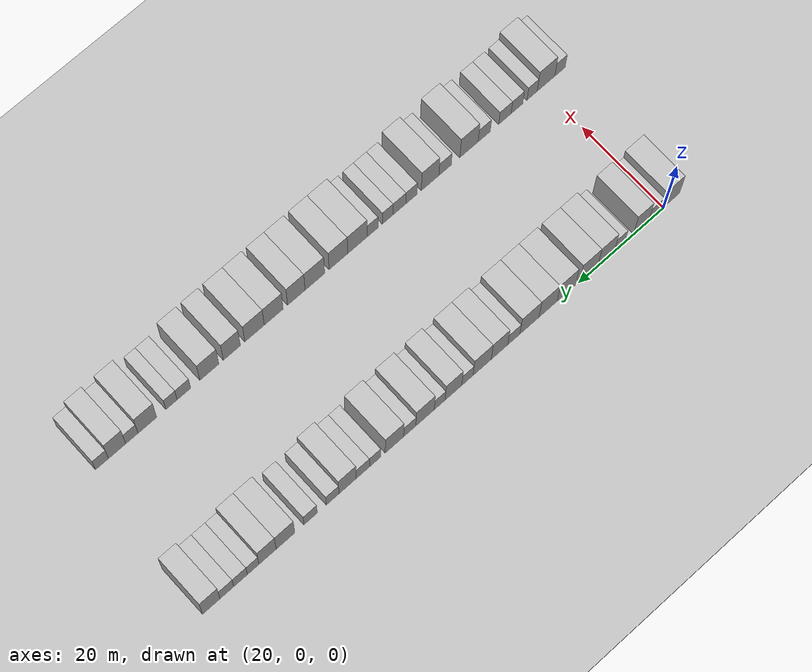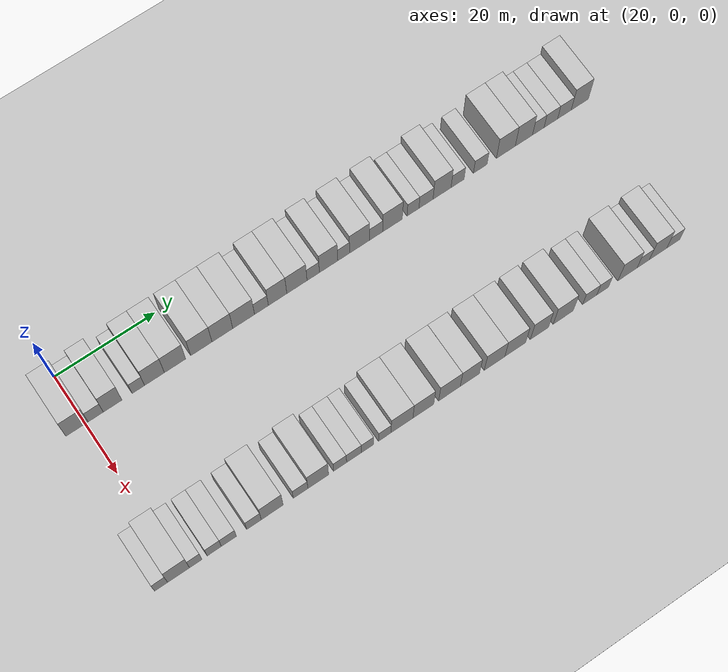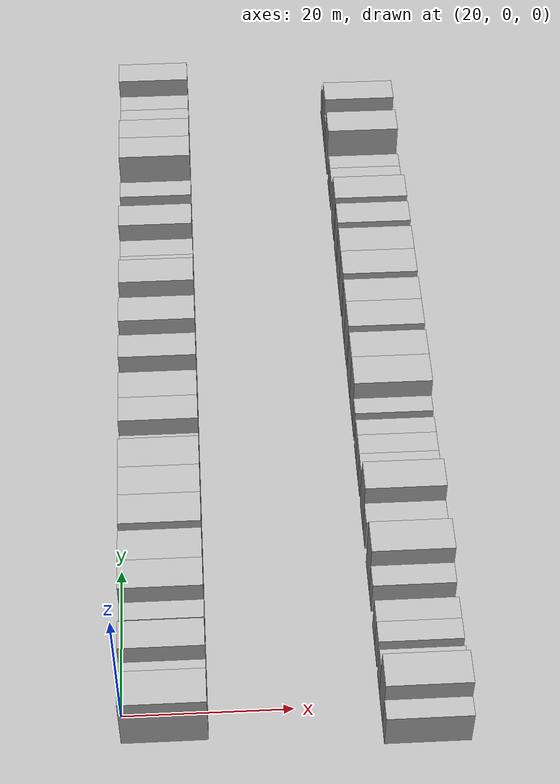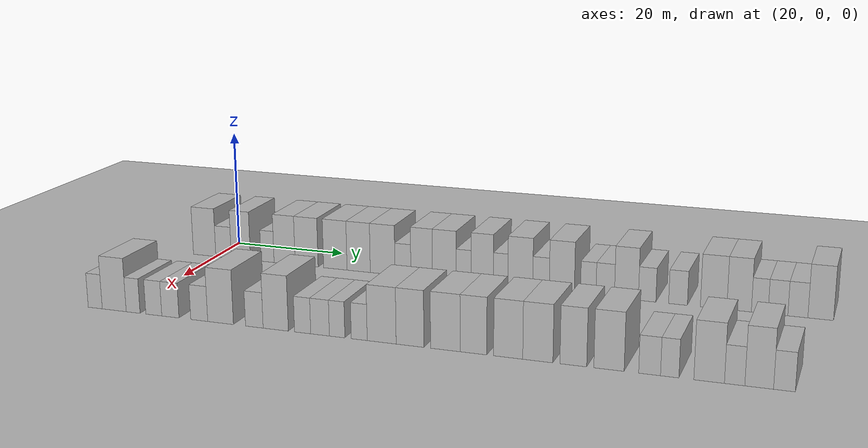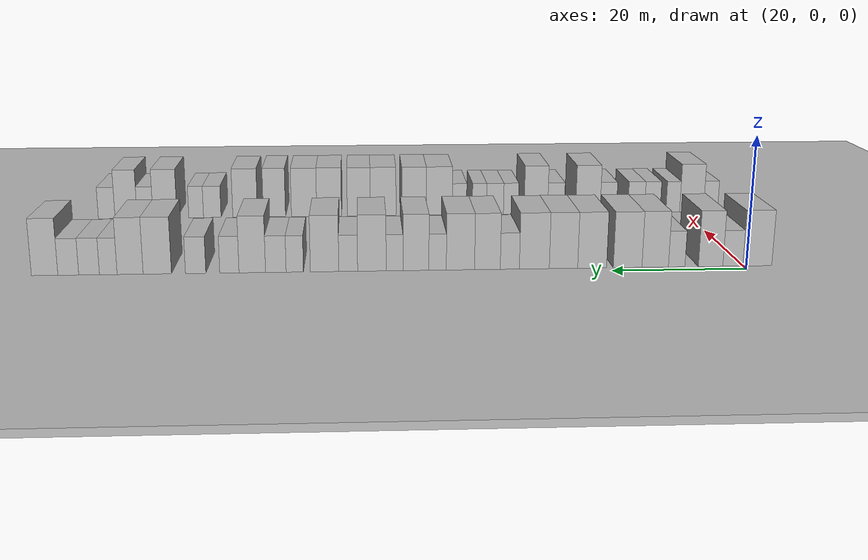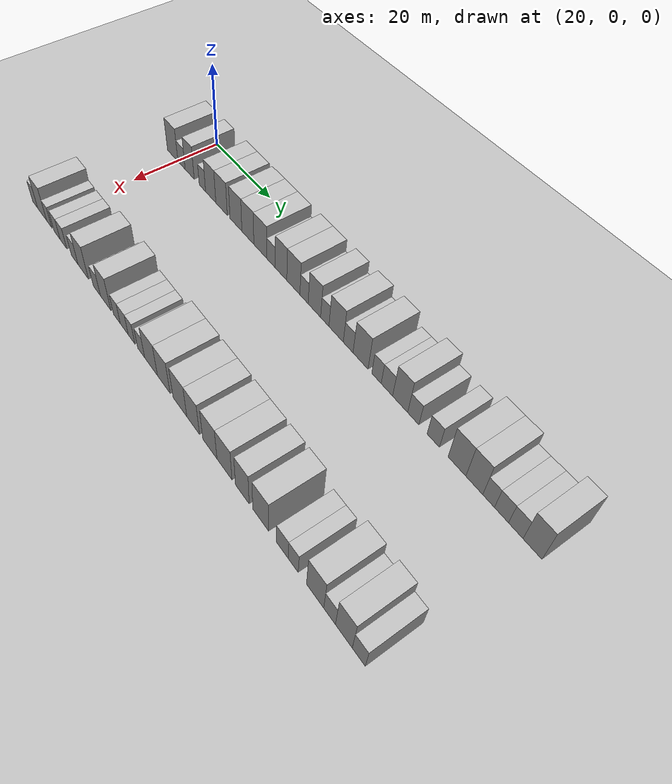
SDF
<sdf version="1.6">
 <world name="default">
  <include><name>ground_plane_1</name><uri>model://HANNAS_ground_plane</uri></include>
  <include>
   <name>ground_plane_2</name>
   <uri>model://HANNAS_ground_plane</uri>
   <pose>100 0 0  0 0 0</pose>
  </include>
  <model name="building_60">
   <static>1</static>
   <pose>25.0000 -1.5689 0 0.000000 0.000000 0.000000</pose>
   <link name="link">
    <pose>0 0 4.50 0 0 0</pose>
    <collision name="collision"><geometry><box><size>10.0000 4.3411 9.0000</size></box></geometry></collision>
    <visual name="visual">
     <cast_shadows>0</cast_shadows>
     <geometry><box><size>10.0000 4.3411 9.0000</size></box></geometry>
     <material>
      <script>
       <uri>model://HANNAS_wall/materials/scripts</uri>
       <uri>model://HANNAS_wall/materials/textures</uri>
       <name>vrc/HANNAS_wall</name>
      </script>
     </material>
    </visual>
   </link>
  </model>
  <model name="building_61">
   <static>1</static>
   <pose>25.0000 2.0888 0 0.000000 0.000000 0.000000</pose>
   <link name="link">
    <pose>0 0 3.00 0 0 0</pose>
    <collision name="collision"><geometry><box><size>10.0000 2.9745 6.0000</size></box></geometry></collision>
    <visual name="visual">
     <cast_shadows>0</cast_shadows>
     <geometry><box><size>10.0000 2.9745 6.0000</size></box></geometry>
     <material>
      <script>
       <uri>model://HANNAS_wall/materials/scripts</uri>
       <uri>model://HANNAS_wall/materials/textures</uri>
       <name>vrc/HANNAS_wall</name>
      </script>
     </material>
    </visual>
   </link>
  </model>
  <model name="building_62">
   <static>1</static>
   <pose>25.0000 5.4020 0 0.000000 0.000000 0.000000</pose>
   <link name="link">
    <pose>0 0 4.50 0 0 0</pose>
    <collision name="collision"><geometry><box><size>10.0000 3.6519 9.0000</size></box></geometry></collision>
    <visual name="visual">
     <cast_shadows>0</cast_shadows>
     <geometry><box><size>10.0000 3.6519 9.0000</size></box></geometry>
     <material>
      <script>
       <uri>model://HANNAS_wall/materials/scripts</uri>
       <uri>model://HANNAS_wall/materials/textures</uri>
       <name>vrc/HANNAS_wall</name>
      </script>
     </material>
    </visual>
   </link>
  </model>
  <model name="building_63">
   <static>1</static>
   <pose>25.0000 10.4590 0 0.000000 0.000000 0.000000</pose>
   <link name="link">
    <pose>0 0 3.00 0 0 0</pose>
    <collision name="collision"><geometry><box><size>10.0000 2.4620 6.0000</size></box></geometry></collision>
    <visual name="visual">
     <cast_shadows>0</cast_shadows>
     <geometry><box><size>10.0000 2.4620 6.0000</size></box></geometry>
     <material>
      <script>
       <uri>model://HANNAS_wall/materials/scripts</uri>
       <uri>model://HANNAS_wall/materials/textures</uri>
       <name>vrc/HANNAS_wall</name>
      </script>
     </material>
    </visual>
   </link>
  </model>
  <model name="building_64">
   <static>1</static>
   <pose>25.0000 13.6569 0 0.000000 0.000000 0.000000</pose>
   <link name="link">
    <pose>0 0 4.50 0 0 0</pose>
    <collision name="collision"><geometry><box><size>10.0000 3.9337 9.0000</size></box></geometry></collision>
    <visual name="visual">
     <cast_shadows>0</cast_shadows>
     <geometry><box><size>10.0000 3.9337 9.0000</size></box></geometry>
     <material>
      <script>
       <uri>model://HANNAS_wall/materials/scripts</uri>
       <uri>model://HANNAS_wall/materials/textures</uri>
       <name>vrc/HANNAS_wall</name>
      </script>
     </material>
    </visual>
   </link>
  </model>
  <model name="building_65">
   <static>1</static>
   <pose>25.0000 17.7492 0 0.000000 0.000000 0.000000</pose>
   <link name="link">
    <pose>0 0 4.50 0 0 0</pose>
    <collision name="collision"><geometry><box><size>10.0000 4.2509 9.0000</size></box></geometry></collision>
    <visual name="visual">
     <cast_shadows>0</cast_shadows>
     <geometry><box><size>10.0000 4.2509 9.0000</size></box></geometry>
     <material>
      <script>
       <uri>model://HANNAS_wall/materials/scripts</uri>
       <uri>model://HANNAS_wall/materials/textures</uri>
       <name>vrc/HANNAS_wall</name>
      </script>
     </material>
    </visual>
   </link>
  </model>
  <model name="building_66">
   <static>1</static>
   <pose>25.0000 23.0106 0 0.000000 0.000000 0.000000</pose>
   <link name="link">
    <pose>0 0 4.50 0 0 0</pose>
    <collision name="collision"><geometry><box><size>10.0000 4.2719 9.0000</size></box></geometry></collision>
    <visual name="visual">
     <cast_shadows>0</cast_shadows>
     <geometry><box><size>10.0000 4.2719 9.0000</size></box></geometry>
     <material>
      <script>
       <uri>model://HANNAS_wall/materials/scripts</uri>
       <uri>model://HANNAS_wall/materials/textures</uri>
       <name>vrc/HANNAS_wall</name>
      </script>
     </material>
    </visual>
   </link>
  </model>
  <model name="building_67">
   <static>1</static>
   <pose>25.0000 27.2440 0 0.000000 0.000000 0.000000</pose>
   <link name="link">
    <pose>0 0 4.50 0 0 0</pose>
    <collision name="collision"><geometry><box><size>10.0000 4.1949 9.0000</size></box></geometry></collision>
    <visual name="visual">
     <cast_shadows>0</cast_shadows>
     <geometry><box><size>10.0000 4.1949 9.0000</size></box></geometry>
     <material>
      <script>
       <uri>model://HANNAS_wall/materials/scripts</uri>
       <uri>model://HANNAS_wall/materials/textures</uri>
       <name>vrc/HANNAS_wall</name>
      </script>
     </material>
    </visual>
   </link>
  </model>
  <model name="building_68">
   <static>1</static>
   <pose>25.0000 31.5443 0 0.000000 0.000000 0.000000</pose>
   <link name="link">
    <pose>0 0 4.50 0 0 0</pose>
    <collision name="collision"><geometry><box><size>10.0000 4.4057 9.0000</size></box></geometry></collision>
    <visual name="visual">
     <cast_shadows>0</cast_shadows>
     <geometry><box><size>10.0000 4.4057 9.0000</size></box></geometry>
     <material>
      <script>
       <uri>model://HANNAS_wall/materials/scripts</uri>
       <uri>model://HANNAS_wall/materials/textures</uri>
       <name>vrc/HANNAS_wall</name>
      </script>
     </material>
    </visual>
   </link>
  </model>
  <model name="building_69">
   <static>1</static>
   <pose>25.0000 35.1485 0 0.000000 0.000000 0.000000</pose>
   <link name="link">
    <pose>0 0 3.00 0 0 0</pose>
    <collision name="collision"><geometry><box><size>10.0000 2.8026 6.0000</size></box></geometry></collision>
    <visual name="visual">
     <cast_shadows>0</cast_shadows>
     <geometry><box><size>10.0000 2.8026 6.0000</size></box></geometry>
     <material>
      <script>
       <uri>model://HANNAS_wall/materials/scripts</uri>
       <uri>model://HANNAS_wall/materials/textures</uri>
       <name>vrc/HANNAS_wall</name>
      </script>
     </material>
    </visual>
   </link>
  </model>
  <model name="building_70">
   <static>1</static>
   <pose>25.0000 38.4346 0 0.000000 0.000000 0.000000</pose>
   <link name="link">
    <pose>0 0 4.50 0 0 0</pose>
    <collision name="collision"><geometry><box><size>10.0000 3.7697 9.0000</size></box></geometry></collision>
    <visual name="visual">
     <cast_shadows>0</cast_shadows>
     <geometry><box><size>10.0000 3.7697 9.0000</size></box></geometry>
     <material>
      <script>
       <uri>model://HANNAS_wall/materials/scripts</uri>
       <uri>model://HANNAS_wall/materials/textures</uri>
       <name>vrc/HANNAS_wall</name>
      </script>
     </material>
    </visual>
   </link>
  </model>
  <model name="building_71">
   <static>1</static>
   <pose>25.0000 42.3894 0 0.000000 0.000000 0.000000</pose>
   <link name="link">
    <pose>0 0 4.50 0 0 0</pose>
    <collision name="collision"><geometry><box><size>10.0000 4.1398 9.0000</size></box></geometry></collision>
    <visual name="visual">
     <cast_shadows>0</cast_shadows>
     <geometry><box><size>10.0000 4.1398 9.0000</size></box></geometry>
     <material>
      <script>
       <uri>model://HANNAS_wall/materials/scripts</uri>
       <uri>model://HANNAS_wall/materials/textures</uri>
       <name>vrc/HANNAS_wall</name>
      </script>
     </material>
    </visual>
   </link>
  </model>
  <model name="building_72">
   <static>1</static>
   <pose>25.0000 45.7347 0 0.000000 0.000000 0.000000</pose>
   <link name="link">
    <pose>0 0 3.00 0 0 0</pose>
    <collision name="collision"><geometry><box><size>10.0000 2.5509 6.0000</size></box></geometry></collision>
    <visual name="visual">
     <cast_shadows>0</cast_shadows>
     <geometry><box><size>10.0000 2.5509 6.0000</size></box></geometry>
     <material>
      <script>
       <uri>model://HANNAS_wall/materials/scripts</uri>
       <uri>model://HANNAS_wall/materials/textures</uri>
       <name>vrc/HANNAS_wall</name>
      </script>
     </material>
    </visual>
   </link>
  </model>
  <model name="building_73">
   <static>1</static>
   <pose>25.0000 48.8990 0 0.000000 0.000000 0.000000</pose>
   <link name="link">
    <pose>0 0 4.50 0 0 0</pose>
    <collision name="collision"><geometry><box><size>10.0000 3.7776 9.0000</size></box></geometry></collision>
    <visual name="visual">
     <cast_shadows>0</cast_shadows>
     <geometry><box><size>10.0000 3.7776 9.0000</size></box></geometry>
     <material>
      <script>
       <uri>model://HANNAS_wall/materials/scripts</uri>
       <uri>model://HANNAS_wall/materials/textures</uri>
       <name>vrc/HANNAS_wall</name>
      </script>
     </material>
    </visual>
   </link>
  </model>
  <model name="building_74">
   <static>1</static>
   <pose>25.0000 52.0146 0 0.000000 0.000000 0.000000</pose>
   <link name="link">
    <pose>0 0 3.00 0 0 0</pose>
    <collision name="collision"><geometry><box><size>10.0000 2.4535 6.0000</size></box></geometry></collision>
    <visual name="visual">
     <cast_shadows>0</cast_shadows>
     <geometry><box><size>10.0000 2.4535 6.0000</size></box></geometry>
     <material>
      <script>
       <uri>model://HANNAS_wall/materials/scripts</uri>
       <uri>model://HANNAS_wall/materials/textures</uri>
       <name>vrc/HANNAS_wall</name>
      </script>
     </material>
    </visual>
   </link>
  </model>
  <model name="building_75">
   <static>1</static>
   <pose>25.0000 55.3180 0 0.000000 0.000000 0.000000</pose>
   <link name="link">
    <pose>0 0 4.50 0 0 0</pose>
    <collision name="collision"><geometry><box><size>10.0000 4.1533 9.0000</size></box></geometry></collision>
    <visual name="visual">
     <cast_shadows>0</cast_shadows>
     <geometry><box><size>10.0000 4.1533 9.0000</size></box></geometry>
     <material>
      <script>
       <uri>model://HANNAS_wall/materials/scripts</uri>
       <uri>model://HANNAS_wall/materials/textures</uri>
       <name>vrc/HANNAS_wall</name>
      </script>
     </material>
    </visual>
   </link>
  </model>
  <model name="building_76">
   <static>1</static>
   <pose>25.0000 58.7597 0 0.000000 0.000000 0.000000</pose>
   <link name="link">
    <pose>0 0 3.00 0 0 0</pose>
    <collision name="collision"><geometry><box><size>10.0000 2.7301 6.0000</size></box></geometry></collision>
    <visual name="visual">
     <cast_shadows>0</cast_shadows>
     <geometry><box><size>10.0000 2.7301 6.0000</size></box></geometry>
     <material>
      <script>
       <uri>model://HANNAS_wall/materials/scripts</uri>
       <uri>model://HANNAS_wall/materials/textures</uri>
       <name>vrc/HANNAS_wall</name>
      </script>
     </material>
    </visual>
   </link>
  </model>
  <model name="building_77">
   <static>1</static>
   <pose>25.0000 62.1870 0 0.000000 0.000000 0.000000</pose>
   <link name="link">
    <pose>0 0 4.50 0 0 0</pose>
    <collision name="collision"><geometry><box><size>10.0000 4.1246 9.0000</size></box></geometry></collision>
    <visual name="visual">
     <cast_shadows>0</cast_shadows>
     <geometry><box><size>10.0000 4.1246 9.0000</size></box></geometry>
     <material>
      <script>
       <uri>model://HANNAS_wall/materials/scripts</uri>
       <uri>model://HANNAS_wall/materials/textures</uri>
       <name>vrc/HANNAS_wall</name>
      </script>
     </material>
    </visual>
   </link>
  </model>
  <model name="building_78">
   <static>1</static>
   <pose>25.0000 66.5038 0 0.000000 0.000000 0.000000</pose>
   <link name="link">
    <pose>0 0 3.00 0 0 0</pose>
    <collision name="collision"><geometry><box><size>10.0000 2.5090 6.0000</size></box></geometry></collision>
    <visual name="visual">
     <cast_shadows>0</cast_shadows>
     <geometry><box><size>10.0000 2.5090 6.0000</size></box></geometry>
     <material>
      <script>
       <uri>model://HANNAS_wall/materials/scripts</uri>
       <uri>model://HANNAS_wall/materials/textures</uri>
       <name>vrc/HANNAS_wall</name>
      </script>
     </material>
    </visual>
   </link>
  </model>
  <model name="building_79">
   <static>1</static>
   <pose>25.0000 69.2434 0 0.000000 0.000000 0.000000</pose>
   <link name="link">
    <pose>0 0 3.00 0 0 0</pose>
    <collision name="collision"><geometry><box><size>10.0000 2.9703 6.0000</size></box></geometry></collision>
    <visual name="visual">
     <cast_shadows>0</cast_shadows>
     <geometry><box><size>10.0000 2.9703 6.0000</size></box></geometry>
     <material>
      <script>
       <uri>model://HANNAS_wall/materials/scripts</uri>
       <uri>model://HANNAS_wall/materials/textures</uri>
       <name>vrc/HANNAS_wall</name>
      </script>
     </material>
    </visual>
   </link>
  </model>
  <model name="building_80">
   <static>1</static>
   <pose>25.0000 72.6388 0 0.000000 0.000000 0.000000</pose>
   <link name="link">
    <pose>0 0 4.50 0 0 0</pose>
    <collision name="collision"><geometry><box><size>10.0000 3.8206 9.0000</size></box></geometry></collision>
    <visual name="visual">
     <cast_shadows>0</cast_shadows>
     <geometry><box><size>10.0000 3.8206 9.0000</size></box></geometry>
     <material>
      <script>
       <uri>model://HANNAS_wall/materials/scripts</uri>
       <uri>model://HANNAS_wall/materials/textures</uri>
       <name>vrc/HANNAS_wall</name>
      </script>
     </material>
    </visual>
   </link>
  </model>
  <model name="building_81">
   <static>1</static>
   <pose>25.0000 75.9329 0 0.000000 0.000000 0.000000</pose>
   <link name="link">
    <pose>0 0 3.00 0 0 0</pose>
    <collision name="collision"><geometry><box><size>10.0000 2.7677 6.0000</size></box></geometry></collision>
    <visual name="visual">
     <cast_shadows>0</cast_shadows>
     <geometry><box><size>10.0000 2.7677 6.0000</size></box></geometry>
     <material>
      <script>
       <uri>model://HANNAS_wall/materials/scripts</uri>
       <uri>model://HANNAS_wall/materials/textures</uri>
       <name>vrc/HANNAS_wall</name>
      </script>
     </material>
    </visual>
   </link>
  </model>
  <model name="building_82">
   <static>1</static>
   <pose>25.0000 80.7816 0 0.000000 0.000000 0.000000</pose>
   <link name="link">
    <pose>0 0 3.00 0 0 0</pose>
    <collision name="collision"><geometry><box><size>10.0000 2.9296 6.0000</size></box></geometry></collision>
    <visual name="visual">
     <cast_shadows>0</cast_shadows>
     <geometry><box><size>10.0000 2.9296 6.0000</size></box></geometry>
     <material>
      <script>
       <uri>model://HANNAS_wall/materials/scripts</uri>
       <uri>model://HANNAS_wall/materials/textures</uri>
       <name>vrc/HANNAS_wall</name>
      </script>
     </material>
    </visual>
   </link>
  </model>
  <model name="building_83">
   <static>1</static>
   <pose>25.0000 86.2776 0 0.000000 0.000000 0.000000</pose>
   <link name="link">
    <pose>0 0 4.50 0 0 0</pose>
    <collision name="collision"><geometry><box><size>10.0000 4.0623 9.0000</size></box></geometry></collision>
    <visual name="visual">
     <cast_shadows>0</cast_shadows>
     <geometry><box><size>10.0000 4.0623 9.0000</size></box></geometry>
     <material>
      <script>
       <uri>model://HANNAS_wall/materials/scripts</uri>
       <uri>model://HANNAS_wall/materials/textures</uri>
       <name>vrc/HANNAS_wall</name>
      </script>
     </material>
    </visual>
   </link>
  </model>
  <model name="building_84">
   <static>1</static>
   <pose>25.0000 90.1693 0 0.000000 0.000000 0.000000</pose>
   <link name="link">
    <pose>0 0 4.50 0 0 0</pose>
    <collision name="collision"><geometry><box><size>10.0000 3.7211 9.0000</size></box></geometry></collision>
    <visual name="visual">
     <cast_shadows>0</cast_shadows>
     <geometry><box><size>10.0000 3.7211 9.0000</size></box></geometry>
     <material>
      <script>
       <uri>model://HANNAS_wall/materials/scripts</uri>
       <uri>model://HANNAS_wall/materials/textures</uri>
       <name>vrc/HANNAS_wall</name>
      </script>
     </material>
    </visual>
   </link>
  </model>
  <model name="building_85">
   <static>1</static>
   <pose>25.0000 93.2882 0 0.000000 0.000000 0.000000</pose>
   <link name="link">
    <pose>0 0 3.00 0 0 0</pose>
    <collision name="collision"><geometry><box><size>10.0000 2.5167 6.0000</size></box></geometry></collision>
    <visual name="visual">
     <cast_shadows>0</cast_shadows>
     <geometry><box><size>10.0000 2.5167 6.0000</size></box></geometry>
     <material>
      <script>
       <uri>model://HANNAS_wall/materials/scripts</uri>
       <uri>model://HANNAS_wall/materials/textures</uri>
       <name>vrc/HANNAS_wall</name>
      </script>
     </material>
    </visual>
   </link>
  </model>
  <model name="building_86">
   <static>1</static>
   <pose>25.0000 96.0236 0 0.000000 0.000000 0.000000</pose>
   <link name="link">
    <pose>0 0 3.00 0 0 0</pose>
    <collision name="collision"><geometry><box><size>10.0000 2.9541 6.0000</size></box></geometry></collision>
    <visual name="visual">
     <cast_shadows>0</cast_shadows>
     <geometry><box><size>10.0000 2.9541 6.0000</size></box></geometry>
     <material>
      <script>
       <uri>model://HANNAS_wall/materials/scripts</uri>
       <uri>model://HANNAS_wall/materials/textures</uri>
       <name>vrc/HANNAS_wall</name>
      </script>
     </material>
    </visual>
   </link>
  </model>
  <model name="building_87">
   <static>1</static>
   <pose>25.0000 98.9813 0 0.000000 0.000000 0.000000</pose>
   <link name="link">
    <pose>0 0 3.00 0 0 0</pose>
    <collision name="collision"><geometry><box><size>10.0000 2.9613 6.0000</size></box></geometry></collision>
    <visual name="visual">
     <cast_shadows>0</cast_shadows>
     <geometry><box><size>10.0000 2.9613 6.0000</size></box></geometry>
     <material>
      <script>
       <uri>model://HANNAS_wall/materials/scripts</uri>
       <uri>model://HANNAS_wall/materials/textures</uri>
       <name>vrc/HANNAS_wall</name>
      </script>
     </material>
    </visual>
   </link>
  </model>
  <model name="building_88">
   <static>1</static>
   <pose>25.0000 102.3441 0 0.000000 0.000000 0.000000</pose>
   <link name="link">
    <pose>0 0 4.50 0 0 0</pose>
    <collision name="collision"><geometry><box><size>10.0000 3.7644 9.0000</size></box></geometry></collision>
    <visual name="visual">
     <cast_shadows>0</cast_shadows>
     <geometry><box><size>10.0000 3.7644 9.0000</size></box></geometry>
     <material>
      <script>
       <uri>model://HANNAS_wall/materials/scripts</uri>
       <uri>model://HANNAS_wall/materials/textures</uri>
       <name>vrc/HANNAS_wall</name>
      </script>
     </material>
    </visual>
   </link>
  </model>
  <model name="building_171">
   <static>1</static>
   <pose>55.0000 -4.0443 0 0.000000 0.000000 0.000000</pose>
   <link name="link">
    <pose>0 0 3.00 0 0 0</pose>
    <collision name="collision"><geometry><box><size>10.0000 2.4871 6.0000</size></box></geometry></collision>
    <visual name="visual">
     <cast_shadows>0</cast_shadows>
     <geometry><box><size>10.0000 2.4871 6.0000</size></box></geometry>
     <material>
      <script>
       <uri>model://HANNAS_wall/materials/scripts</uri>
       <uri>model://HANNAS_wall/materials/textures</uri>
       <name>vrc/HANNAS_wall</name>
      </script>
     </material>
    </visual>
   </link>
  </model>
  <model name="building_172">
   <static>1</static>
   <pose>55.0000 -0.7016 0 0.000000 0.000000 0.000000</pose>
   <link name="link">
    <pose>0 0 4.50 0 0 0</pose>
    <collision name="collision"><geometry><box><size>10.0000 4.1982 9.0000</size></box></geometry></collision>
    <visual name="visual">
     <cast_shadows>0</cast_shadows>
     <geometry><box><size>10.0000 4.1982 9.0000</size></box></geometry>
     <material>
      <script>
       <uri>model://HANNAS_wall/materials/scripts</uri>
       <uri>model://HANNAS_wall/materials/textures</uri>
       <name>vrc/HANNAS_wall</name>
      </script>
     </material>
    </visual>
   </link>
  </model>
  <model name="building_173">
   <static>1</static>
   <pose>55.0000 2.6057 0 0.000000 0.000000 0.000000</pose>
   <link name="link">
    <pose>0 0 3.00 0 0 0</pose>
    <collision name="collision"><geometry><box><size>10.0000 2.4163 6.0000</size></box></geometry></collision>
    <visual name="visual">
     <cast_shadows>0</cast_shadows>
     <geometry><box><size>10.0000 2.4163 6.0000</size></box></geometry>
     <material>
      <script>
       <uri>model://HANNAS_wall/materials/scripts</uri>
       <uri>model://HANNAS_wall/materials/textures</uri>
       <name>vrc/HANNAS_wall</name>
      </script>
     </material>
    </visual>
   </link>
  </model>
  <model name="building_174">
   <static>1</static>
   <pose>55.0000 6.1900 0 0.000000 0.000000 0.000000</pose>
   <link name="link">
    <pose>0 0 3.00 0 0 0</pose>
    <collision name="collision"><geometry><box><size>10.0000 2.7524 6.0000</size></box></geometry></collision>
    <visual name="visual">
     <cast_shadows>0</cast_shadows>
     <geometry><box><size>10.0000 2.7524 6.0000</size></box></geometry>
     <material>
      <script>
       <uri>model://HANNAS_wall/materials/scripts</uri>
       <uri>model://HANNAS_wall/materials/textures</uri>
       <name>vrc/HANNAS_wall</name>
      </script>
     </material>
    </visual>
   </link>
  </model>
  <model name="building_175">
   <static>1</static>
   <pose>55.0000 9.0348 0 0.000000 0.000000 0.000000</pose>
   <link name="link">
    <pose>0 0 3.00 0 0 0</pose>
    <collision name="collision"><geometry><box><size>10.0000 2.9372 6.0000</size></box></geometry></collision>
    <visual name="visual">
     <cast_shadows>0</cast_shadows>
     <geometry><box><size>10.0000 2.9372 6.0000</size></box></geometry>
     <material>
      <script>
       <uri>model://HANNAS_wall/materials/scripts</uri>
       <uri>model://HANNAS_wall/materials/textures</uri>
       <name>vrc/HANNAS_wall</name>
      </script>
     </material>
    </visual>
   </link>
  </model>
  <model name="building_176">
   <static>1</static>
   <pose>55.0000 13.9291 0 0.000000 0.000000 0.000000</pose>
   <link name="link">
    <pose>0 0 3.00 0 0 0</pose>
    <collision name="collision"><geometry><box><size>10.0000 2.8514 6.0000</size></box></geometry></collision>
    <visual name="visual">
     <cast_shadows>0</cast_shadows>
     <geometry><box><size>10.0000 2.8514 6.0000</size></box></geometry>
     <material>
      <script>
       <uri>model://HANNAS_wall/materials/scripts</uri>
       <uri>model://HANNAS_wall/materials/textures</uri>
       <name>vrc/HANNAS_wall</name>
      </script>
     </material>
    </visual>
   </link>
  </model>
  <model name="building_177">
   <static>1</static>
   <pose>55.0000 17.5004 0 0.000000 0.000000 0.000000</pose>
   <link name="link">
    <pose>0 0 4.50 0 0 0</pose>
    <collision name="collision"><geometry><box><size>10.0000 4.2911 9.0000</size></box></geometry></collision>
    <visual name="visual">
     <cast_shadows>0</cast_shadows>
     <geometry><box><size>10.0000 4.2911 9.0000</size></box></geometry>
     <material>
      <script>
       <uri>model://HANNAS_wall/materials/scripts</uri>
       <uri>model://HANNAS_wall/materials/textures</uri>
       <name>vrc/HANNAS_wall</name>
      </script>
     </material>
    </visual>
   </link>
  </model>
  <model name="building_178">
   <static>1</static>
   <pose>55.0000 23.0888 0 0.000000 0.000000 0.000000</pose>
   <link name="link">
    <pose>0 0 3.00 0 0 0</pose>
    <collision name="collision"><geometry><box><size>10.0000 2.8857 6.0000</size></box></geometry></collision>
    <visual name="visual">
     <cast_shadows>0</cast_shadows>
     <geometry><box><size>10.0000 2.8857 6.0000</size></box></geometry>
     <material>
      <script>
       <uri>model://HANNAS_wall/materials/scripts</uri>
       <uri>model://HANNAS_wall/materials/textures</uri>
       <name>vrc/HANNAS_wall</name>
      </script>
     </material>
    </visual>
   </link>
  </model>
  <model name="building_179">
   <static>1</static>
   <pose>55.0000 26.5779 0 0.000000 0.000000 0.000000</pose>
   <link name="link">
    <pose>0 0 4.50 0 0 0</pose>
    <collision name="collision"><geometry><box><size>10.0000 4.0924 9.0000</size></box></geometry></collision>
    <visual name="visual">
     <cast_shadows>0</cast_shadows>
     <geometry><box><size>10.0000 4.0924 9.0000</size></box></geometry>
     <material>
      <script>
       <uri>model://HANNAS_wall/materials/scripts</uri>
       <uri>model://HANNAS_wall/materials/textures</uri>
       <name>vrc/HANNAS_wall</name>
      </script>
     </material>
    </visual>
   </link>
  </model>
  <model name="building_180">
   <static>1</static>
   <pose>55.0000 30.9185 0 0.000000 0.000000 0.000000</pose>
   <link name="link">
    <pose>0 0 3.00 0 0 0</pose>
    <collision name="collision"><geometry><box><size>10.0000 2.5889 6.0000</size></box></geometry></collision>
    <visual name="visual">
     <cast_shadows>0</cast_shadows>
     <geometry><box><size>10.0000 2.5889 6.0000</size></box></geometry>
     <material>
      <script>
       <uri>model://HANNAS_wall/materials/scripts</uri>
       <uri>model://HANNAS_wall/materials/textures</uri>
       <name>vrc/HANNAS_wall</name>
      </script>
     </material>
    </visual>
   </link>
  </model>
  <model name="building_181">
   <static>1</static>
   <pose>55.0000 33.6941 0 0.000000 0.000000 0.000000</pose>
   <link name="link">
    <pose>0 0 3.00 0 0 0</pose>
    <collision name="collision"><geometry><box><size>10.0000 2.9623 6.0000</size></box></geometry></collision>
    <visual name="visual">
     <cast_shadows>0</cast_shadows>
     <geometry><box><size>10.0000 2.9623 6.0000</size></box></geometry>
     <material>
      <script>
       <uri>model://HANNAS_wall/materials/scripts</uri>
       <uri>model://HANNAS_wall/materials/textures</uri>
       <name>vrc/HANNAS_wall</name>
      </script>
     </material>
    </visual>
   </link>
  </model>
  <model name="building_182">
   <static>1</static>
   <pose>55.0000 36.3962 0 0.000000 0.000000 0.000000</pose>
   <link name="link">
    <pose>0 0 3.00 0 0 0</pose>
    <collision name="collision"><geometry><box><size>10.0000 2.4419 6.0000</size></box></geometry></collision>
    <visual name="visual">
     <cast_shadows>0</cast_shadows>
     <geometry><box><size>10.0000 2.4419 6.0000</size></box></geometry>
     <material>
      <script>
       <uri>model://HANNAS_wall/materials/scripts</uri>
       <uri>model://HANNAS_wall/materials/textures</uri>
       <name>vrc/HANNAS_wall</name>
      </script>
     </material>
    </visual>
   </link>
  </model>
  <model name="building_183">
   <static>1</static>
   <pose>55.0000 39.8614 0 0.000000 0.000000 0.000000</pose>
   <link name="link">
    <pose>0 0 3.00 0 0 0</pose>
    <collision name="collision"><geometry><box><size>10.0000 2.4884 6.0000</size></box></geometry></collision>
    <visual name="visual">
     <cast_shadows>0</cast_shadows>
     <geometry><box><size>10.0000 2.4884 6.0000</size></box></geometry>
     <material>
      <script>
       <uri>model://HANNAS_wall/materials/scripts</uri>
       <uri>model://HANNAS_wall/materials/textures</uri>
       <name>vrc/HANNAS_wall</name>
      </script>
     </material>
    </visual>
   </link>
  </model>
  <model name="building_184">
   <static>1</static>
   <pose>55.0000 43.3398 0 0.000000 0.000000 0.000000</pose>
   <link name="link">
    <pose>0 0 4.50 0 0 0</pose>
    <collision name="collision"><geometry><box><size>10.0000 4.4685 9.0000</size></box></geometry></collision>
    <visual name="visual">
     <cast_shadows>0</cast_shadows>
     <geometry><box><size>10.0000 4.4685 9.0000</size></box></geometry>
     <material>
      <script>
       <uri>model://HANNAS_wall/materials/scripts</uri>
       <uri>model://HANNAS_wall/materials/textures</uri>
       <name>vrc/HANNAS_wall</name>
      </script>
     </material>
    </visual>
   </link>
  </model>
  <model name="building_185">
   <static>1</static>
   <pose>55.0000 47.6885 0 0.000000 0.000000 0.000000</pose>
   <link name="link">
    <pose>0 0 4.50 0 0 0</pose>
    <collision name="collision"><geometry><box><size>10.0000 4.2287 9.0000</size></box></geometry></collision>
    <visual name="visual">
     <cast_shadows>0</cast_shadows>
     <geometry><box><size>10.0000 4.2287 9.0000</size></box></geometry>
     <material>
      <script>
       <uri>model://HANNAS_wall/materials/scripts</uri>
       <uri>model://HANNAS_wall/materials/textures</uri>
       <name>vrc/HANNAS_wall</name>
      </script>
     </material>
    </visual>
   </link>
  </model>
  <model name="building_186">
   <static>1</static>
   <pose>55.0000 53.0123 0 0.000000 0.000000 0.000000</pose>
   <link name="link">
    <pose>0 0 4.50 0 0 0</pose>
    <collision name="collision"><geometry><box><size>10.0000 4.4189 9.0000</size></box></geometry></collision>
    <visual name="visual">
     <cast_shadows>0</cast_shadows>
     <geometry><box><size>10.0000 4.4189 9.0000</size></box></geometry>
     <material>
      <script>
       <uri>model://HANNAS_wall/materials/scripts</uri>
       <uri>model://HANNAS_wall/materials/textures</uri>
       <name>vrc/HANNAS_wall</name>
      </script>
     </material>
    </visual>
   </link>
  </model>
  <model name="building_187">
   <static>1</static>
   <pose>55.0000 57.1990 0 0.000000 0.000000 0.000000</pose>
   <link name="link">
    <pose>0 0 4.50 0 0 0</pose>
    <collision name="collision"><geometry><box><size>10.0000 3.9544 9.0000</size></box></geometry></collision>
    <visual name="visual">
     <cast_shadows>0</cast_shadows>
     <geometry><box><size>10.0000 3.9544 9.0000</size></box></geometry>
     <material>
      <script>
       <uri>model://HANNAS_wall/materials/scripts</uri>
       <uri>model://HANNAS_wall/materials/textures</uri>
       <name>vrc/HANNAS_wall</name>
      </script>
     </material>
    </visual>
   </link>
  </model>
  <model name="building_188">
   <static>1</static>
   <pose>55.0000 62.2963 0 0.000000 0.000000 0.000000</pose>
   <link name="link">
    <pose>0 0 4.50 0 0 0</pose>
    <collision name="collision"><geometry><box><size>10.0000 4.2402 9.0000</size></box></geometry></collision>
    <visual name="visual">
     <cast_shadows>0</cast_shadows>
     <geometry><box><size>10.0000 4.2402 9.0000</size></box></geometry>
     <material>
      <script>
       <uri>model://HANNAS_wall/materials/scripts</uri>
       <uri>model://HANNAS_wall/materials/textures</uri>
       <name>vrc/HANNAS_wall</name>
      </script>
     </material>
    </visual>
   </link>
  </model>
  <model name="building_189">
   <static>1</static>
   <pose>55.0000 66.5816 0 0.000000 0.000000 0.000000</pose>
   <link name="link">
    <pose>0 0 4.50 0 0 0</pose>
    <collision name="collision"><geometry><box><size>10.0000 4.3305 9.0000</size></box></geometry></collision>
    <visual name="visual">
     <cast_shadows>0</cast_shadows>
     <geometry><box><size>10.0000 4.3305 9.0000</size></box></geometry>
     <material>
      <script>
       <uri>model://HANNAS_wall/materials/scripts</uri>
       <uri>model://HANNAS_wall/materials/textures</uri>
       <name>vrc/HANNAS_wall</name>
      </script>
     </material>
    </visual>
   </link>
  </model>
  <model name="building_190">
   <static>1</static>
   <pose>55.0000 71.6379 0 0.000000 0.000000 0.000000</pose>
   <link name="link">
    <pose>0 0 4.50 0 0 0</pose>
    <collision name="collision"><geometry><box><size>10.0000 3.7821 9.0000</size></box></geometry></collision>
    <visual name="visual">
     <cast_shadows>0</cast_shadows>
     <geometry><box><size>10.0000 3.7821 9.0000</size></box></geometry>
     <material>
      <script>
       <uri>model://HANNAS_wall/materials/scripts</uri>
       <uri>model://HANNAS_wall/materials/textures</uri>
       <name>vrc/HANNAS_wall</name>
      </script>
     </material>
    </visual>
   </link>
  </model>
  <model name="building_191">
   <static>1</static>
   <pose>55.0000 76.6347 0 0.000000 0.000000 0.000000</pose>
   <link name="link">
    <pose>0 0 4.50 0 0 0</pose>
    <collision name="collision"><geometry><box><size>10.0000 4.2116 9.0000</size></box></geometry></collision>
    <visual name="visual">
     <cast_shadows>0</cast_shadows>
     <geometry><box><size>10.0000 4.2116 9.0000</size></box></geometry>
     <material>
      <script>
       <uri>model://HANNAS_wall/materials/scripts</uri>
       <uri>model://HANNAS_wall/materials/textures</uri>
       <name>vrc/HANNAS_wall</name>
      </script>
     </material>
    </visual>
   </link>
  </model>
  <model name="building_192">
   <static>1</static>
   <pose>55.0000 82.2330 0 0.000000 0.000000 0.000000</pose>
   <link name="link">
    <pose>0 0 3.00 0 0 0</pose>
    <collision name="collision"><geometry><box><size>10.0000 2.9848 6.0000</size></box></geometry></collision>
    <visual name="visual">
     <cast_shadows>0</cast_shadows>
     <geometry><box><size>10.0000 2.9848 6.0000</size></box></geometry>
     <material>
      <script>
       <uri>model://HANNAS_wall/materials/scripts</uri>
       <uri>model://HANNAS_wall/materials/textures</uri>
       <name>vrc/HANNAS_wall</name>
      </script>
     </material>
    </visual>
   </link>
  </model>
  <model name="building_193">
   <static>1</static>
   <pose>55.0000 84.9707 0 0.000000 0.000000 0.000000</pose>
   <link name="link">
    <pose>0 0 3.00 0 0 0</pose>
    <collision name="collision"><geometry><box><size>10.0000 2.4907 6.0000</size></box></geometry></collision>
    <visual name="visual">
     <cast_shadows>0</cast_shadows>
     <geometry><box><size>10.0000 2.4907 6.0000</size></box></geometry>
     <material>
      <script>
       <uri>model://HANNAS_wall/materials/scripts</uri>
       <uri>model://HANNAS_wall/materials/textures</uri>
       <name>vrc/HANNAS_wall</name>
      </script>
     </material>
    </visual>
   </link>
  </model>
  <model name="building_194">
   <static>1</static>
   <pose>55.0000 90.2529 0 0.000000 0.000000 0.000000</pose>
   <link name="link">
    <pose>0 0 4.50 0 0 0</pose>
    <collision name="collision"><geometry><box><size>10.0000 4.0736 9.0000</size></box></geometry></collision>
    <visual name="visual">
     <cast_shadows>0</cast_shadows>
     <geometry><box><size>10.0000 4.0736 9.0000</size></box></geometry>
     <material>
      <script>
       <uri>model://HANNAS_wall/materials/scripts</uri>
       <uri>model://HANNAS_wall/materials/textures</uri>
       <name>vrc/HANNAS_wall</name>
      </script>
     </material>
    </visual>
   </link>
  </model>
  <model name="building_195">
   <static>1</static>
   <pose>55.0000 93.6300 0 0.000000 0.000000 0.000000</pose>
   <link name="link">
    <pose>0 0 3.00 0 0 0</pose>
    <collision name="collision"><geometry><box><size>10.0000 2.6807 6.0000</size></box></geometry></collision>
    <visual name="visual">
     <cast_shadows>0</cast_shadows>
     <geometry><box><size>10.0000 2.6807 6.0000</size></box></geometry>
     <material>
      <script>
       <uri>model://HANNAS_wall/materials/scripts</uri>
       <uri>model://HANNAS_wall/materials/textures</uri>
       <name>vrc/HANNAS_wall</name>
      </script>
     </material>
    </visual>
   </link>
  </model>
  <model name="building_196">
   <static>1</static>
   <pose>55.0000 96.8411 0 0.000000 0.000000 0.000000</pose>
   <link name="link">
    <pose>0 0 4.50 0 0 0</pose>
    <collision name="collision"><geometry><box><size>10.0000 3.7416 9.0000</size></box></geometry></collision>
    <visual name="visual">
     <cast_shadows>0</cast_shadows>
     <geometry><box><size>10.0000 3.7416 9.0000</size></box></geometry>
     <material>
      <script>
       <uri>model://HANNAS_wall/materials/scripts</uri>
       <uri>model://HANNAS_wall/materials/textures</uri>
       <name>vrc/HANNAS_wall</name>
      </script>
     </material>
    </visual>
   </link>
  </model>
  <model name="building_197">
   <static>1</static>
   <pose>55.0000 100.1151 0 0.000000 0.000000 0.000000</pose>
   <link name="link">
    <pose>0 0 3.00 0 0 0</pose>
    <collision name="collision"><geometry><box><size>10.0000 2.8063 6.0000</size></box></geometry></collision>
    <visual name="visual">
     <cast_shadows>0</cast_shadows>
     <geometry><box><size>10.0000 2.8063 6.0000</size></box></geometry>
     <material>
      <script>
       <uri>model://HANNAS_wall/materials/scripts</uri>
       <uri>model://HANNAS_wall/materials/textures</uri>
       <name>vrc/HANNAS_wall</name>
      </script>
     </material>
    </visual>
   </link>
  </model>
 </world>
</sdf>
